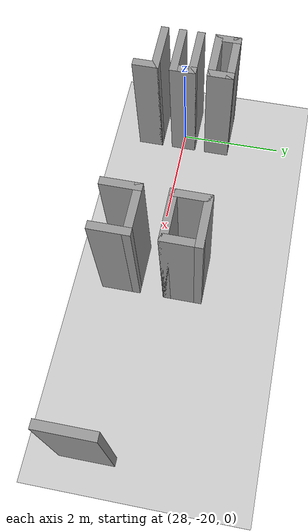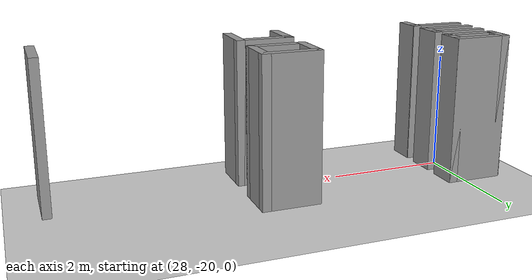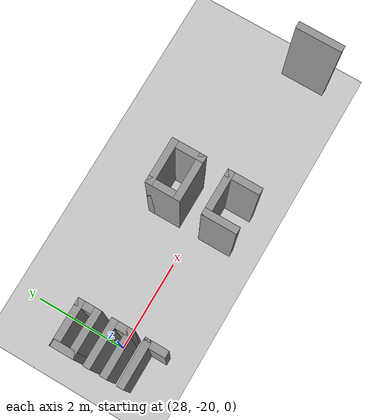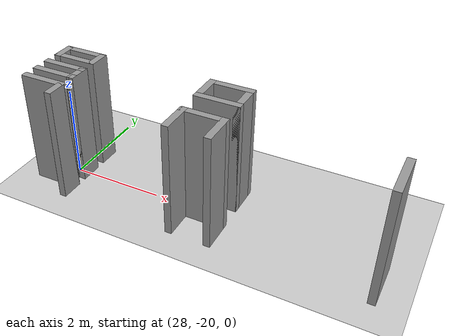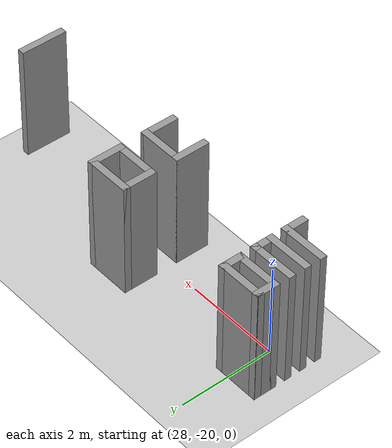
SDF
<sdf version="1.6">
 <world name="default">
  <model name="ground_plane">
   <static>1</static>
   <link name="link">
    <collision name="collision">
     <geometry><plane><normal>0 0 1</normal><size>300 300</size></plane></geometry>
     <surface>
      <contact><collide_bitmask>65535</collide_bitmask></contact>
      <friction><ode><mu>100</mu><mu2>50</mu2></ode></friction>
     </surface>
    </collision>
    <visual name="visual">
     <cast_shadows>0</cast_shadows>
     <geometry><plane><normal>0 0 1</normal><size>300 300</size></plane></geometry>
     <material>
      <script><uri>file://media/materials/scripts/gazebo.material</uri><name>Gazebo/Grey</name></script>
     </material>
    </visual>
   </link>
  </model>
  <model name="NIK">
   <pose>-0.005548 -3.7937 0 0 -0 0</pose>
   <link name="Wall_336">
    <collision name="Wall_336_Collision">
     <geometry><box><size>1 0.15 2.5</size></box></geometry>
     <pose>0 0 1.25 0 -0 0</pose>
    </collision>
    <visual name="Wall_336_Visual">
     <pose>0 0 1.25 0 -0 0</pose>
     <geometry><box><size>1 0.15 2.5</size></box></geometry>
     <material>
      <script><uri>file://media/materials/scripts/gazebo.material</uri><name>Gazebo/Grey</name></script>
      <ambient>1 1 1 1</ambient>
     </material>
     <meta><layer>0</layer></meta>
    </visual>
    <pose>34.8905 -16.6025 0 0 -0 -1.5708</pose>
   </link>
   <link name="Wall_338">
    <collision name="Wall_338_Collision">
     <geometry><box><size>0.75 0.15 2.5</size></box></geometry>
     <pose>0 0 1.25 0 -0 0</pose>
    </collision>
    <visual name="Wall_338_Visual">
     <pose>0 0 1.25 0 -0 0</pose>
     <geometry><box><size>0.75 0.15 2.5</size></box></geometry>
     <material>
      <script><uri>file://media/materials/scripts/gazebo.material</uri><name>Gazebo/Grey</name></script>
      <ambient>1 1 1 1</ambient>
     </material>
     <meta><layer>0</layer></meta>
    </visual>
    <pose>31.6709 -16.7498 0 0 -0 1.5708</pose>
   </link>
   <link name="Wall_340">
    <collision name="Wall_340_Collision">
     <geometry><box><size>0.75 0.15 2.5</size></box></geometry>
     <pose>0 0 1.25 0 -0 0</pose>
    </collision>
    <visual name="Wall_340_Visual">
     <pose>0 0 1.25 0 -0 0</pose>
     <geometry><box><size>0.75 0.15 2.5</size></box></geometry>
     <material>
      <script><uri>file://media/materials/scripts/gazebo.material</uri><name>Gazebo/Grey</name></script>
      <ambient>1 1 1 1</ambient>
     </material>
     <meta><layer>0</layer></meta>
    </visual>
    <pose>31.6709 -15.5498 0 0 -0 1.5708</pose>
   </link>
   <link name="Wall_371">
    <collision name="Wall_371_Collision">
     <geometry><box><size>1 0.15 2.5</size></box></geometry>
     <pose>0 0 1.25 0 -0 0</pose>
    </collision>
    <visual name="Wall_371_Visual">
     <pose>0 0 1.25 0 -0 0</pose>
     <geometry><box><size>1 0.15 2.5</size></box></geometry>
     <material>
      <script><uri>file://media/materials/scripts/gazebo.material</uri><name>Gazebo/Grey</name></script>
      <ambient>1 1 1 1</ambient>
     </material>
     <meta><layer>0</layer></meta>
    </visual>
    <pose>31.2459 -15.2498 0 0 -0 3.14159</pose>
   </link>
   <link name="Wall_372">
    <collision name="Wall_372_Collision">
     <geometry><box><size>0.75 0.15 2.5</size></box></geometry>
     <pose>0 0 1.25 0 -0 0</pose>
    </collision>
    <visual name="Wall_372_Visual">
     <pose>0 0 1.25 0 -0 0</pose>
     <geometry><box><size>0.75 0.15 2.5</size></box></geometry>
     <material>
      <script><uri>file://media/materials/scripts/gazebo.material</uri><name>Gazebo/Grey</name></script>
      <ambient>1 1 1 1</ambient>
     </material>
     <meta><layer>0</layer></meta>
    </visual>
    <pose>30.8209 -15.5498 0 0 -0 -1.5708</pose>
   </link>
   <link name="Wall_373">
    <collision name="Wall_373_Collision">
     <geometry><box><size>1 0.15 2.5</size></box></geometry>
     <pose>0 0 1.25 0 -0 0</pose>
    </collision>
    <visual name="Wall_373_Visual">
     <pose>0 0 1.25 0 -0 0</pose>
     <geometry><box><size>1 0.15 2.5</size></box></geometry>
     <material>
      <script><uri>file://media/materials/scripts/gazebo.material</uri><name>Gazebo/Grey</name></script>
      <ambient>1 1 1 1</ambient>
     </material>
     <meta><layer>0</layer></meta>
    </visual>
    <pose>31.2459 -15.8498 0 0 -0 0</pose>
   </link>
   <link name="Wall_375">
    <collision name="Wall_375_Collision">
     <geometry><box><size>1 0.15 2.5</size></box></geometry>
     <pose>0 0 1.25 0 -0 0</pose>
    </collision>
    <visual name="Wall_375_Visual">
     <pose>0 0 1.25 0 -0 0</pose>
     <geometry><box><size>1 0.15 2.5</size></box></geometry>
     <material>
      <script><uri>file://media/materials/scripts/gazebo.material</uri><name>Gazebo/Grey</name></script>
      <ambient>1 1 1 1</ambient>
     </material>
     <meta><layer>0</layer></meta>
    </visual>
    <pose>31.2459 -16.4498 0 0 -0 3.14159</pose>
   </link>
   <link name="Wall_376">
    <collision name="Wall_376_Collision">
     <geometry><box><size>0.75 0.15 2.5</size></box></geometry>
     <pose>0 0 1.25 0 -0 0</pose>
    </collision>
    <visual name="Wall_376_Visual">
     <pose>0 0 1.25 0 -0 0</pose>
     <geometry><box><size>0.75 0.15 2.5</size></box></geometry>
     <material>
      <script><uri>file://media/materials/scripts/gazebo.material</uri><name>Gazebo/Grey</name></script>
      <ambient>1 1 1 1</ambient>
     </material>
     <meta><layer>0</layer></meta>
    </visual>
    <pose>30.8209 -16.7498 0 0 -0 -1.5708</pose>
   </link>
   <link name="Wall_378">
    <collision name="Wall_378_Collision">
     <geometry><box><size>0.5 0.15 2.5</size></box></geometry>
     <pose>0 0 1.25 0 -0 0</pose>
    </collision>
    <visual name="Wall_378_Visual">
     <pose>0 0 1.25 0 -0 0</pose>
     <geometry><box><size>0.5 0.15 2.5</size></box></geometry>
     <material>
      <script><uri>file://media/materials/scripts/gazebo.material</uri><name>Gazebo/Grey</name></script>
      <ambient>1 1 1 1</ambient>
     </material>
     <meta><layer>0</layer></meta>
    </visual>
    <pose>28.2363 -16.8906 0 0 -0 1.5708</pose>
   </link>
   <link name="Wall_380">
    <collision name="Wall_380_Collision">
     <geometry><box><size>0.5 0.15 2.5</size></box></geometry>
     <pose>0 0 1.25 0 -0 0</pose>
    </collision>
    <visual name="Wall_380_Visual">
     <pose>0 0 1.25 0 -0 0</pose>
     <geometry><box><size>0.5 0.15 2.5</size></box></geometry>
     <material>
      <script><uri>file://media/materials/scripts/gazebo.material</uri><name>Gazebo/Grey</name></script>
      <ambient>1 1 1 1</ambient>
     </material>
     <meta><layer>0</layer></meta>
    </visual>
    <pose>28.2363 -16.1906 0 0 -0 1.5708</pose>
   </link>
   <link name="Wall_382">
    <collision name="Wall_382_Collision">
     <geometry><box><size>0.5 0.15 2.5</size></box></geometry>
     <pose>0 0 1.25 0 -0 0</pose>
    </collision>
    <visual name="Wall_382_Visual">
     <pose>0 0 1.25 0 -0 0</pose>
     <geometry><box><size>0.5 0.15 2.5</size></box></geometry>
     <material>
      <script><uri>file://media/materials/scripts/gazebo.material</uri><name>Gazebo/Grey</name></script>
      <ambient>1 1 1 1</ambient>
     </material>
     <meta><layer>0</layer></meta>
    </visual>
    <pose>28.2363 -15.4906 0 0 -0 1.5708</pose>
   </link>
   <link name="Wall_399">
    <collision name="Wall_399_Collision">
     <geometry><box><size>1 0.15 2.5</size></box></geometry>
     <pose>0 0 1.25 0 -0 0</pose>
    </collision>
    <visual name="Wall_399_Visual">
     <pose>0 0 1.25 0 -0 0</pose>
     <geometry><box><size>1 0.15 2.5</size></box></geometry>
     <material>
      <script><uri>file://media/materials/scripts/gazebo.material</uri><name>Gazebo/Grey</name></script>
      <ambient>1 1 1 1</ambient>
     </material>
     <meta><layer>0</layer></meta>
    </visual>
    <pose>27.8113 -16.7156 0 0 -0 3.14159</pose>
   </link>
   <link name="Wall_402">
    <collision name="Wall_402_Collision">
     <geometry><box><size>1 0.15 2.5</size></box></geometry>
     <pose>0 0 1.25 0 -0 0</pose>
    </collision>
    <visual name="Wall_402_Visual">
     <pose>0 0 1.25 0 -0 0</pose>
     <geometry><box><size>1 0.15 2.5</size></box></geometry>
     <material>
      <script><uri>file://media/materials/scripts/gazebo.material</uri><name>Gazebo/Grey</name></script>
      <ambient>1 1 1 1</ambient>
     </material>
     <meta><layer>0</layer></meta>
    </visual>
    <pose>27.8113 -16.3656 0 0 -0 3.14159</pose>
   </link>
   <link name="Wall_404">
    <collision name="Wall_404_Collision">
     <geometry><box><size>1 0.15 2.5</size></box></geometry>
     <pose>0 0 1.25 0 -0 0</pose>
    </collision>
    <visual name="Wall_404_Visual">
     <pose>0 0 1.25 0 -0 0</pose>
     <geometry><box><size>1 0.15 2.5</size></box></geometry>
     <material>
      <script><uri>file://media/materials/scripts/gazebo.material</uri><name>Gazebo/Grey</name></script>
      <ambient>1 1 1 1</ambient>
     </material>
     <meta><layer>0</layer></meta>
    </visual>
    <pose>27.8113 -16.0156 0 0 -0 0</pose>
   </link>
   <link name="Wall_406">
    <collision name="Wall_406_Collision">
     <geometry><box><size>1 0.15 2.5</size></box></geometry>
     <pose>0 0 1.25 0 -0 0</pose>
    </collision>
    <visual name="Wall_406_Visual">
     <pose>0 0 1.25 0 -0 0</pose>
     <geometry><box><size>1 0.15 2.5</size></box></geometry>
     <material>
      <script><uri>file://media/materials/scripts/gazebo.material</uri><name>Gazebo/Grey</name></script>
      <ambient>1 1 1 1</ambient>
     </material>
     <meta><layer>0</layer></meta>
    </visual>
    <pose>27.8113 -15.6656 0 0 -0 3.14159</pose>
   </link>
   <link name="Wall_407">
    <collision name="Wall_407_Collision">
     <geometry><box><size>0.5 0.15 2.5</size></box></geometry>
     <pose>0 0 1.25 0 -0 0</pose>
    </collision>
    <visual name="Wall_407_Visual">
     <pose>0 0 1.25 0 -0 0</pose>
     <geometry><box><size>0.5 0.15 2.5</size></box></geometry>
     <material>
      <script><uri>file://media/materials/scripts/gazebo.material</uri><name>Gazebo/Grey</name></script>
      <ambient>1 1 1 1</ambient>
     </material>
     <meta><layer>0</layer></meta>
    </visual>
    <pose>27.3863 -15.4906 0 0 -0 1.5708</pose>
   </link>
   <link name="Wall_408">
    <collision name="Wall_408_Collision">
     <geometry><box><size>1 0.15 2.5</size></box></geometry>
     <pose>0 0 1.25 0 -0 0</pose>
    </collision>
    <visual name="Wall_408_Visual">
     <pose>0 0 1.25 0 -0 0</pose>
     <geometry><box><size>1 0.15 2.5</size></box></geometry>
     <material>
      <script><uri>file://media/materials/scripts/gazebo.material</uri><name>Gazebo/Grey</name></script>
      <ambient>1 1 1 1</ambient>
     </material>
     <meta><layer>0</layer></meta>
    </visual>
    <pose>27.8113 -15.3156 0 0 -0 0</pose>
   </link>
   <static>1</static>
  </model>
 </world>
</sdf>
